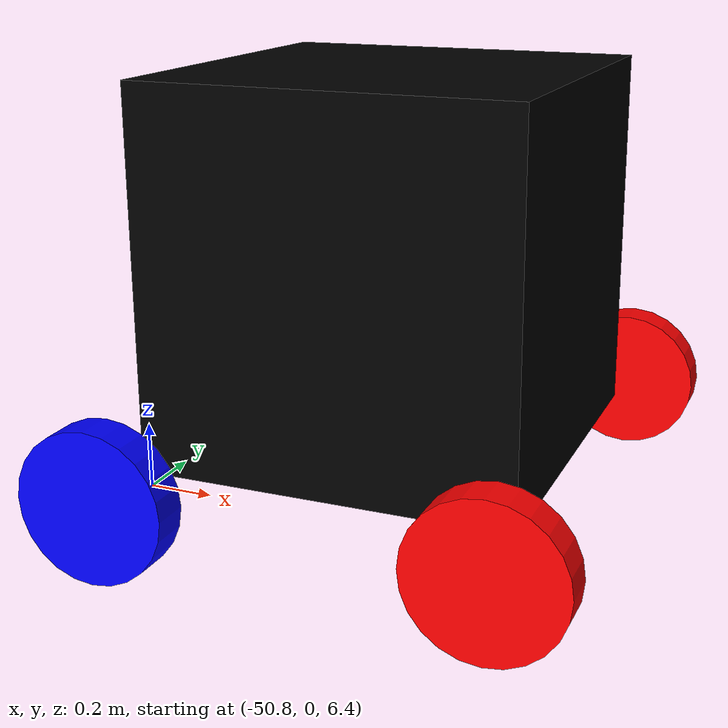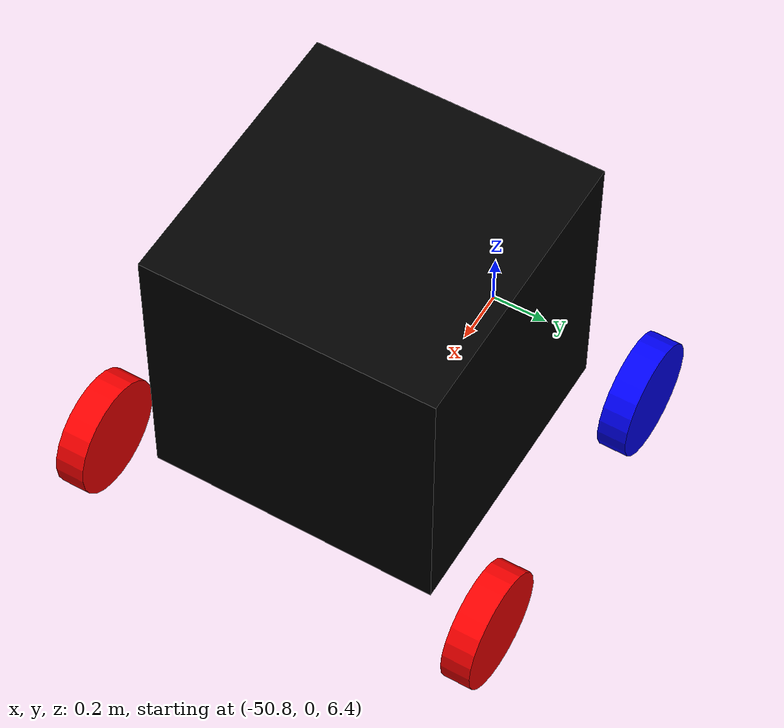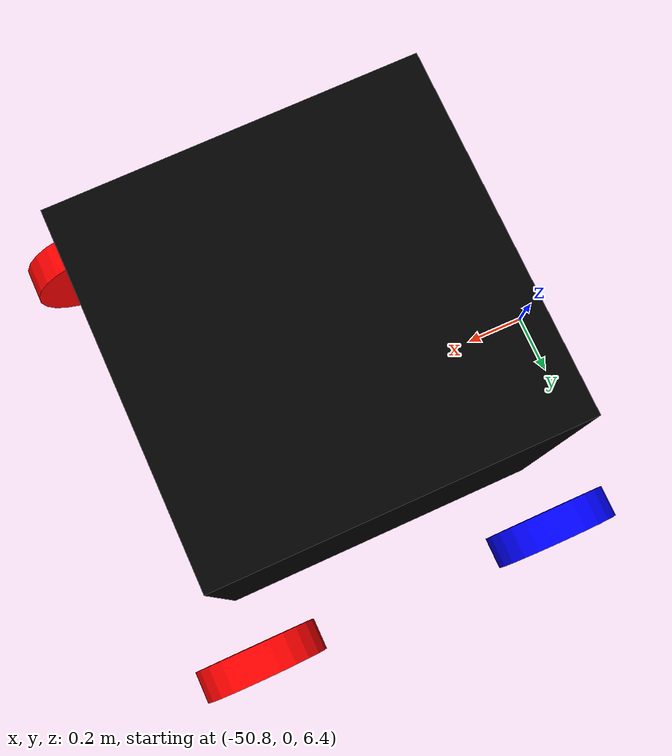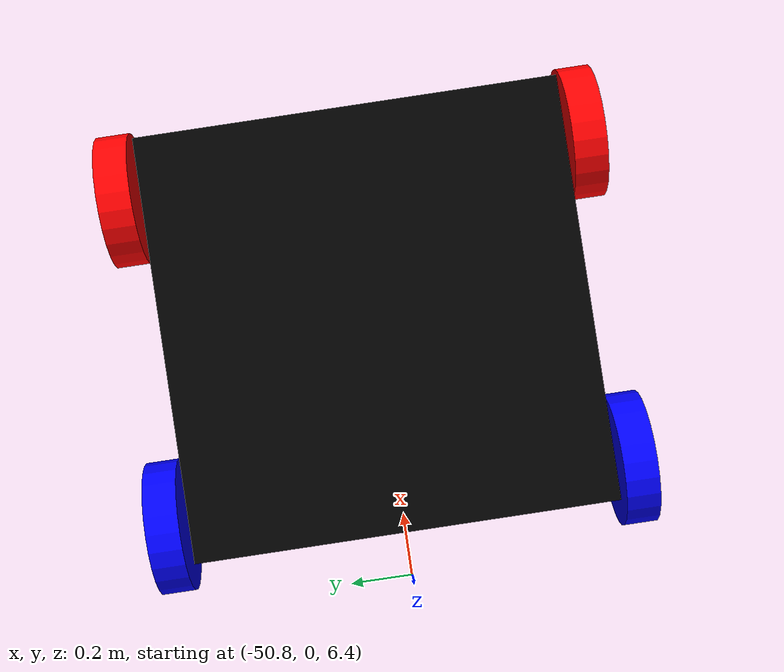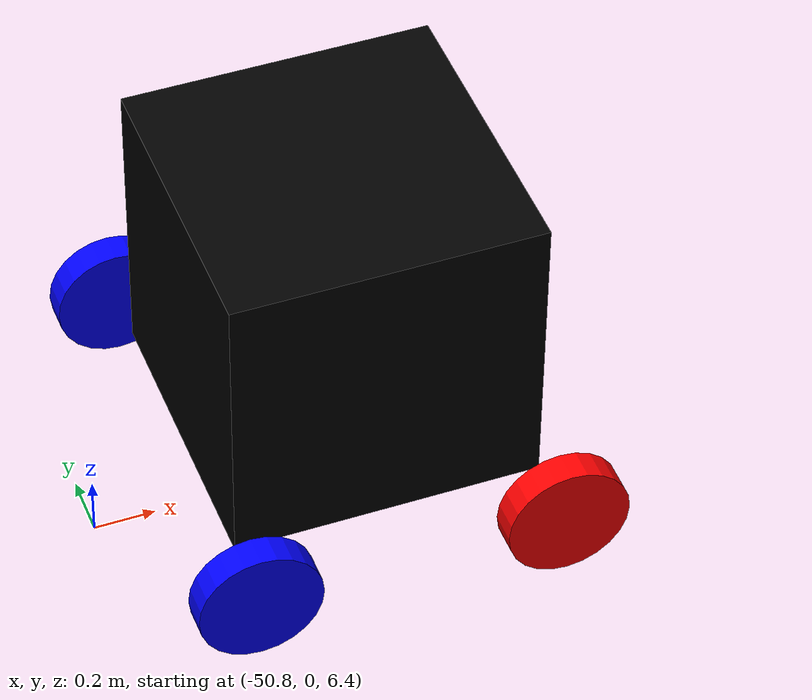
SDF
<sdf version="1.6">
 <world name="default">
  <include><uri>model://sun</uri></include>
  <include><pose>-50 0 7.2 0 0 0</pose><uri>model://mycar</uri></include>
 </world>
</sdf>

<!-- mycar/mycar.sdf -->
<sdf version="1.6">
<model name="mycar">
  <pose>0 0 1.0 0 0 0</pose>
    <link name="chasis">
      <inertial>
        <mass>1.0</mass>
        <inertia> <!-- inertias are tricky to compute -->
          <!-- http://gazebosim.org/tutorials?tut=inertia&cat=build_robot -->
          <ixx>0.1</ixx>       <!-- for a box: ixx = 0.083 * mass * (y*y + z*z) -->
          <ixy>0</ixy>         <!-- for a box: ixy = 0 -->
          <ixz>0</ixz>         <!-- for a box: ixz = 0 -->
          <iyy>0.1</iyy>       <!-- for a box: iyy = 0.083 * mass * (x*x + z*z) -->
          <iyz>0</iyz>         <!-- for a box: iyz = 0 -->
          <izz>0.1</izz>       <!-- for a box: izz = 0.083 * mass * (x*x + y*y) -->
        </inertia>
      </inertial>
      <collision name="collision">
        <geometry>
          <box>
            <size>1 1 1</size>
          </box>
        </geometry>
      </collision>
      <visual name="visual">
				<material>
					<ambient>0 0 0</ambient>
				</material>
        <geometry>
          <box>
            <size>1 1 1</size>
          </box>
        </geometry>
      </visual>
    </link>

    <link name="front_left_wheel">
      <pose>0.5 0.7 -0.5 1.57 0 0</pose>
      <inertial>
        <mass>1.0</mass>
        <inertia> <!-- inertias are tricky to compute -->
          <!-- http://gazebosim.org/tutorials?tut=inertia&cat=build_robot -->
          <ixx>0.01</ixx>       <!-- for a box: ixx = 0.083 * mass * (y*y + z*z) -->
          <ixy>0</ixy>         <!-- for a box: ixy = 0 -->
          <ixz>0</ixz>         <!-- for a box: ixz = 0 -->
          <iyy>0.01</iyy>       <!-- for a box: iyy = 0.083 * mass * (x*x + z*z) -->
          <iyz>0</iyz>         <!-- for a box: iyz = 0 -->
          <izz>0.1</izz>       <!-- for a box: izz = 0.083 * mass * (x*x + y*y) -->
        </inertia>
      </inertial>
      <collision name="collision">
        <geometry>
          <cylinder>
            <radius>0.2</radius>
            <length>0.1</length>
          </cylinder>
        </geometry>
      </collision>
      <visual name="visual">
				<material>
					<ambient>1 0 0</ambient>
				</material>
        <geometry>
          <cylinder>
            <radius>0.2</radius>
            <length>0.1</length>
          </cylinder>
        </geometry>
      </visual>
    </link>

    <joint name="front_left_axle" type="revolute2">
			<parent>chasis</parent>
			<child>front_left_wheel</child>
			<axis>
				<limit>
					<lower>-0.2</lower>
					<upper>0.2</upper>
				</limit>
				<xyz>0 0 1</xyz>
			</axis>
			<axis2>
				<xyz>0 1 0</xyz>
			</axis2>
    </joint>

    <link name="front_right_wheel">
      <pose>0.5 -0.7 -0.5 1.57 0 0</pose>
      <inertial>
        <mass>0.1</mass>
        <inertia> <!-- inertias are tricky to compute -->
          <!-- http://gazebosim.org/tutorials?tut=inertia&cat=build_robot -->
          <ixx>0.01</ixx>       <!-- for a box: ixx = 0.083 * mass * (y*y + z*z) -->
          <ixy>0</ixy>         <!-- for a box: ixy = 0 -->
          <ixz>0</ixz>         <!-- for a box: ixz = 0 -->
          <iyy>0.01</iyy>       <!-- for a box: iyy = 0.083 * mass * (x*x + z*z) -->
          <iyz>0</iyz>         <!-- for a box: iyz = 0 -->
          <izz>0.1</izz>       <!-- for a box: izz = 0.083 * mass * (x*x + y*y) -->
        </inertia>
      </inertial>
      <collision name="collision">
        <geometry>
          <cylinder>
            <radius>0.2</radius>
            <length>0.1</length>
          </cylinder>
        </geometry>
      </collision>
      <visual name="visual">
				<material>
					<ambient>1 0 0</ambient>
				</material>
        <geometry>
          <cylinder>
            <radius>0.2</radius>
            <length>0.1</length>
          </cylinder>
        </geometry>
      </visual>
    </link>

    <joint name="front_right_axle" type="revolute2">
			<parent>chasis</parent>
			<child>front_right_wheel</child>
			<axis>
				<limit>
					<lower>-0.2</lower>
					<upper>0.2</upper>
				</limit>
				<xyz>0 0 1</xyz>
			</axis>
			<axis2>
				<xyz>0 1 0</xyz>
			</axis2>
    </joint>

    <link name="rear_left_wheel">
      <pose>-0.5 0.7 -0.5 1.57 0 0</pose>
      <inertial>
        <mass>0.1</mass>
        <inertia> <!-- inertias are tricky to compute -->
          <!-- http://gazebosim.org/tutorials?tut=inertia&cat=build_robot -->
          <ixx>0.01</ixx>       <!-- for a box: ixx = 0.083 * mass * (y*y + z*z) -->
          <ixy>0</ixy>         <!-- for a box: ixy = 0 -->
          <ixz>0</ixz>         <!-- for a box: ixz = 0 -->
          <iyy>0.01</iyy>       <!-- for a box: iyy = 0.083 * mass * (x*x + z*z) -->
          <iyz>0</iyz>         <!-- for a box: iyz = 0 -->
          <izz>0.1</izz>       <!-- for a box: izz = 0.083 * mass * (x*x + y*y) -->
        </inertia>
      </inertial>
      <collision name="collision">
        <geometry>
          <cylinder>
            <radius>0.2</radius>
            <length>0.1</length>
          </cylinder>
        </geometry>
      </collision>
      <visual name="visual">
				<material>
					<ambient>0 0 1</ambient>
				</material>
        <geometry>
          <cylinder>
            <radius>0.2</radius>
            <length>0.1</length>
          </cylinder>
        </geometry>
      </visual>
    </link>

    <joint name="rear_left_axle" type="revolute">
			<parent>chasis</parent>
			<child>rear_left_wheel</child>
			<axis>
				<xyz>0 0 1</xyz>
			</axis>
    </joint>

    <link name="rear_right_wheel">
      <pose>-0.5 -0.7 -0.5 1.57 0 0</pose>
      <inertial>
        <mass>0.1</mass>
        <inertia> <!-- inertias are tricky to compute -->
          <!-- http://gazebosim.org/tutorials?tut=inertia&cat=build_robot -->
          <ixx>0.01</ixx>       <!-- for a box: ixx = 0.083 * mass * (y*y + z*z) -->
          <ixy>0</ixy>         <!-- for a box: ixy = 0 -->
          <ixz>0</ixz>         <!-- for a box: ixz = 0 -->
          <iyy>0.01</iyy>       <!-- for a box: iyy = 0.083 * mass * (x*x + z*z) -->
          <iyz>0</iyz>         <!-- for a box: iyz = 0 -->
          <izz>0.1</izz>       <!-- for a box: izz = 0.083 * mass * (x*x + y*y) -->
        </inertia>
      </inertial>
      <collision name="collision">
        <geometry>
          <cylinder>
            <radius>0.2</radius>
            <length>0.1</length>
          </cylinder>
        </geometry>
      </collision>
      <visual name="visual">
				<material>
					<ambient>0 0 1</ambient>
				</material>
        <geometry>
          <cylinder>
            <radius>0.2</radius>
            <length>0.1</length>
          </cylinder>
        </geometry>
      </visual>
    </link>

    <joint name="rear_right_axle" type="revolute">
			<parent>chasis</parent>
			<child>rear_right_wheel</child>
			<axis>
				<xyz>0 0 1</xyz>
			</axis>
    </joint>

		<plugin name="p3d" filename="libgazebo_ros_p3d.so">
			<bodyName>chasis</bodyName>
			<topicName>ground_truth</topicName>
			<frameName>world</frameName>
			<updateRate>100</updateRate>
		</plugin>

  </model>
</sdf>

<!-- vim: set et ft=xml fenc=utf-8 ff=unix sts=0 sw=2 ts=2 : -->
